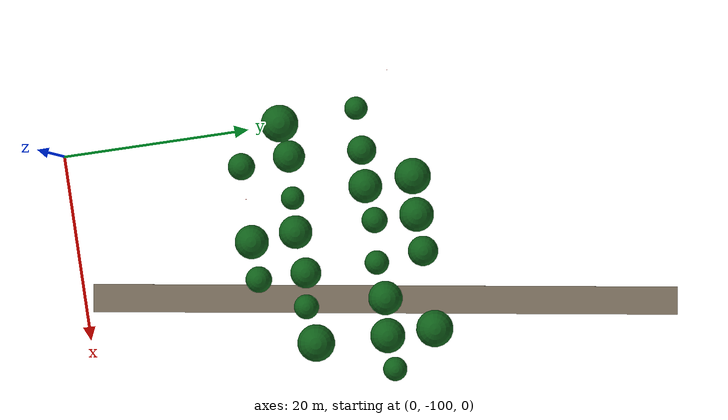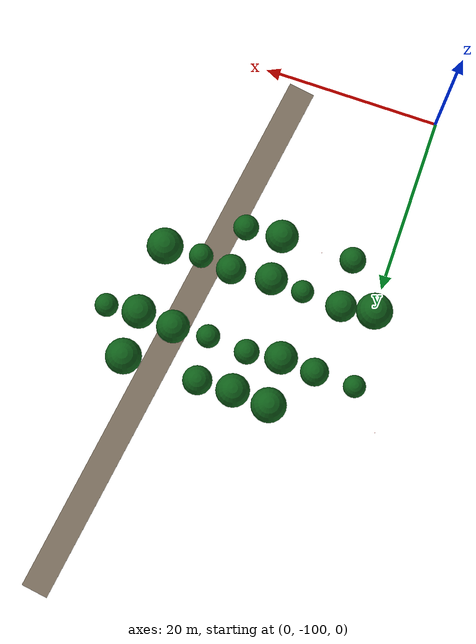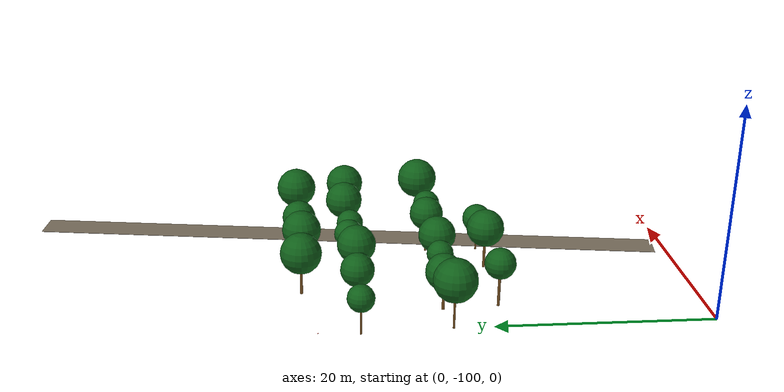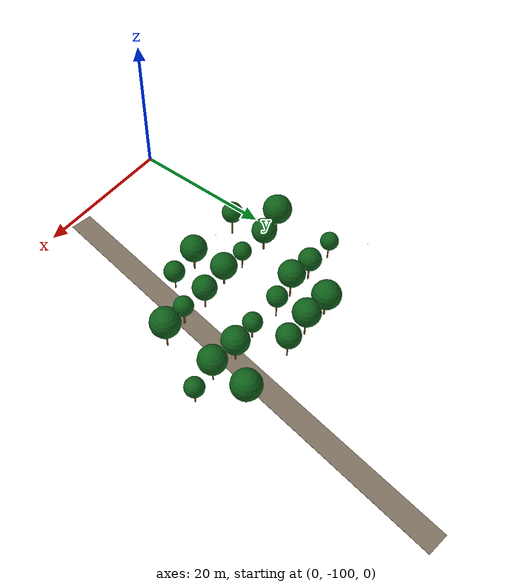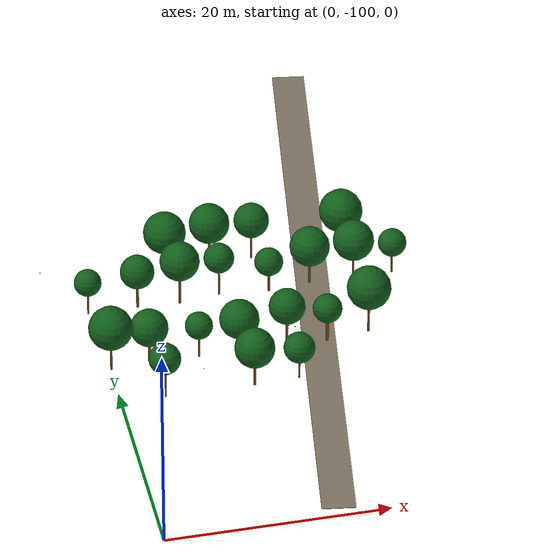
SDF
<sdf version="1.9">
 <world name="cheongsong_orchard">
  <model name="road_9">
   <static>true</static>
   <pose>20.2 -68.0 0.02 0 0 1.4209</pose>
   <link name="link">
    <collision name="collision">
     <geometry><box><size>62.9 3.0 0.04</size></box></geometry>
     <surface><friction><ode><mu>0.9</mu><mu2>0.9</mu2></ode></friction></surface>
    </collision>
    <visual name="visual">
     <geometry><box><size>62.9 3.0 0.04</size></box></geometry>
     <material><ambient>0.4 0.35 0.28 1</ambient><diffuse>0.5 0.45 0.38 1</diffuse></material>
    </visual>
   </link>
  </model>
  <model name="apple_tree_399">
   <static>true</static>
   <pose>3.98 -81.08 0 0 0 0</pose>
   <link name="link">
    <collision name="trunk_col">
     <pose>0 0 1.39 0 0 0</pose>
     <geometry><cylinder><radius>0.126</radius><length>2.78</length></cylinder></geometry>
    </collision>
    <visual name="trunk_vis">
     <pose>0 0 1.39 0 0 0</pose>
     <geometry><cylinder><radius>0.126</radius><length>2.78</length></cylinder></geometry>
     <material><ambient>0.35 0.22 0.08 1</ambient><diffuse>0.45 0.30 0.12 1</diffuse></material>
    </visual>
    <collision name="canopy_col">
     <pose>0 0 4.22 0 0 0</pose>
     <geometry><sphere><radius>1.44</radius></sphere></geometry>
    </collision>
    <visual name="canopy_vis">
     <pose>0 0 4.22 0 0 0</pose>
     <geometry><sphere><radius>1.44</radius></sphere></geometry>
     <material><ambient>0.04 0.28 0.06 1</ambient><diffuse>0.06 0.38 0.10 1</diffuse></material>
    </visual>
   </link>
  </model>
  <model name="apple_tree_401">
   <static>true</static>
   <pose>12.03 -81.15 0 0 0 0</pose>
   <link name="link">
    <collision name="trunk_col">
     <pose>0 0 1.15 0 0 0</pose>
     <geometry><cylinder><radius>0.128</radius><length>2.31</length></cylinder></geometry>
    </collision>
    <visual name="trunk_vis">
     <pose>0 0 1.15 0 0 0</pose>
     <geometry><cylinder><radius>0.128</radius><length>2.31</length></cylinder></geometry>
     <material><ambient>0.35 0.22 0.08 1</ambient><diffuse>0.45 0.30 0.12 1</diffuse></material>
    </visual>
    <collision name="canopy_col">
     <pose>0 0 4.12 0 0 0</pose>
     <geometry><sphere><radius>1.81</radius></sphere></geometry>
    </collision>
    <visual name="canopy_vis">
     <pose>0 0 4.12 0 0 0</pose>
     <geometry><sphere><radius>1.81</radius></sphere></geometry>
     <material><ambient>0.04 0.28 0.06 1</ambient><diffuse>0.06 0.38 0.10 1</diffuse></material>
    </visual>
   </link>
  </model>
  <model name="apple_tree_402">
   <static>true</static>
   <pose>16.08 -81.03 0 0 0 0</pose>
   <link name="link">
    <collision name="trunk_col">
     <pose>0 0 0.98 0 0 0</pose>
     <geometry><cylinder><radius>0.085</radius><length>1.97</length></cylinder></geometry>
    </collision>
    <visual name="trunk_vis">
     <pose>0 0 0.98 0 0 0</pose>
     <geometry><cylinder><radius>0.085</radius><length>1.97</length></cylinder></geometry>
     <material><ambient>0.35 0.22 0.08 1</ambient><diffuse>0.45 0.30 0.12 1</diffuse></material>
    </visual>
    <collision name="canopy_col">
     <pose>0 0 3.38 0 0 0</pose>
     <geometry><sphere><radius>1.41</radius></sphere></geometry>
    </collision>
    <visual name="canopy_vis">
     <pose>0 0 3.38 0 0 0</pose>
     <geometry><sphere><radius>1.41</radius></sphere></geometry>
     <material><ambient>0.04 0.28 0.06 1</ambient><diffuse>0.06 0.38 0.10 1</diffuse></material>
    </visual>
   </link>
  </model>
  <model name="apple_tree_456">
   <static>true</static>
   <pose>0.07 -76.41 0 0 0 0</pose>
   <link name="link">
    <collision name="trunk_col">
     <pose>0 0 1.34 0 0 0</pose>
     <geometry><cylinder><radius>0.097</radius><length>2.68</length></cylinder></geometry>
    </collision>
    <visual name="trunk_vis">
     <pose>0 0 1.34 0 0 0</pose>
     <geometry><cylinder><radius>0.097</radius><length>2.68</length></cylinder></geometry>
     <material><ambient>0.35 0.22 0.08 1</ambient><diffuse>0.45 0.30 0.12 1</diffuse></material>
    </visual>
    <collision name="canopy_col">
     <pose>0 0 4.66 0 0 0</pose>
     <geometry><sphere><radius>1.99</radius></sphere></geometry>
    </collision>
    <visual name="canopy_vis">
     <pose>0 0 4.66 0 0 0</pose>
     <geometry><sphere><radius>1.99</radius></sphere></geometry>
     <material><ambient>0.04 0.28 0.06 1</ambient><diffuse>0.06 0.38 0.10 1</diffuse></material>
    </visual>
   </link>
  </model>
  <model name="apple_tree_457">
   <static>true</static>
   <pose>3.61 -75.96 0 0 0 0</pose>
   <link name="link">
    <collision name="trunk_col">
     <pose>0 0 1.02 0 0 0</pose>
     <geometry><cylinder><radius>0.130</radius><length>2.04</length></cylinder></geometry>
    </collision>
    <visual name="trunk_vis">
     <pose>0 0 1.02 0 0 0</pose>
     <geometry><cylinder><radius>0.130</radius><length>2.04</length></cylinder></geometry>
     <material><ambient>0.35 0.22 0.08 1</ambient><diffuse>0.45 0.30 0.12 1</diffuse></material>
    </visual>
    <collision name="canopy_col">
     <pose>0 0 3.75 0 0 0</pose>
     <geometry><sphere><radius>1.71</radius></sphere></geometry>
    </collision>
    <visual name="canopy_vis">
     <pose>0 0 3.75 0 0 0</pose>
     <geometry><sphere><radius>1.71</radius></sphere></geometry>
     <material><ambient>0.04 0.28 0.06 1</ambient><diffuse>0.06 0.38 0.10 1</diffuse></material>
    </visual>
   </link>
  </model>
  <model name="apple_tree_458">
   <static>true</static>
   <pose>8.04 -76.22 0 0 0 0</pose>
   <link name="link">
    <collision name="trunk_col">
     <pose>0 0 1.10 0 0 0</pose>
     <geometry><cylinder><radius>0.097</radius><length>2.21</length></cylinder></geometry>
    </collision>
    <visual name="trunk_vis">
     <pose>0 0 1.10 0 0 0</pose>
     <geometry><cylinder><radius>0.097</radius><length>2.21</length></cylinder></geometry>
     <material><ambient>0.35 0.22 0.08 1</ambient><diffuse>0.45 0.30 0.12 1</diffuse></material>
    </visual>
    <collision name="canopy_col">
     <pose>0 0 3.46 0 0 0</pose>
     <geometry><sphere><radius>1.25</radius></sphere></geometry>
    </collision>
    <visual name="canopy_vis">
     <pose>0 0 3.46 0 0 0</pose>
     <geometry><sphere><radius>1.25</radius></sphere></geometry>
     <material><ambient>0.04 0.28 0.06 1</ambient><diffuse>0.06 0.38 0.10 1</diffuse></material>
    </visual>
   </link>
  </model>
  <model name="apple_tree_459">
   <static>true</static>
   <pose>11.66 -76.42 0 0 0 0</pose>
   <link name="link">
    <collision name="trunk_col">
     <pose>0 0 0.98 0 0 0</pose>
     <geometry><cylinder><radius>0.107</radius><length>1.95</length></cylinder></geometry>
    </collision>
    <visual name="trunk_vis">
     <pose>0 0 0.98 0 0 0</pose>
     <geometry><cylinder><radius>0.107</radius><length>1.95</length></cylinder></geometry>
     <material><ambient>0.35 0.22 0.08 1</ambient><diffuse>0.45 0.30 0.12 1</diffuse></material>
    </visual>
    <collision name="canopy_col">
     <pose>0 0 3.74 0 0 0</pose>
     <geometry><sphere><radius>1.79</radius></sphere></geometry>
    </collision>
    <visual name="canopy_vis">
     <pose>0 0 3.74 0 0 0</pose>
     <geometry><sphere><radius>1.79</radius></sphere></geometry>
     <material><ambient>0.04 0.28 0.06 1</ambient><diffuse>0.06 0.38 0.10 1</diffuse></material>
    </visual>
   </link>
  </model>
  <model name="apple_tree_460">
   <static>true</static>
   <pose>16.09 -75.96 0 0 0 0</pose>
   <link name="link">
    <collision name="trunk_col">
     <pose>0 0 1.22 0 0 0</pose>
     <geometry><cylinder><radius>0.107</radius><length>2.43</length></cylinder></geometry>
    </collision>
    <visual name="trunk_vis">
     <pose>0 0 1.22 0 0 0</pose>
     <geometry><cylinder><radius>0.107</radius><length>2.43</length></cylinder></geometry>
     <material><ambient>0.35 0.22 0.08 1</ambient><diffuse>0.45 0.30 0.12 1</diffuse></material>
    </visual>
    <collision name="canopy_col">
     <pose>0 0 4.07 0 0 0</pose>
     <geometry><sphere><radius>1.64</radius></sphere></geometry>
    </collision>
    <visual name="canopy_vis">
     <pose>0 0 4.07 0 0 0</pose>
     <geometry><sphere><radius>1.64</radius></sphere></geometry>
     <material><ambient>0.04 0.28 0.06 1</ambient><diffuse>0.06 0.38 0.10 1</diffuse></material>
    </visual>
   </link>
  </model>
  <model name="apple_tree_461">
   <static>true</static>
   <pose>19.67 -76.43 0 0 0 0</pose>
   <link name="link">
    <collision name="trunk_col">
     <pose>0 0 1.14 0 0 0</pose>
     <geometry><cylinder><radius>0.142</radius><length>2.28</length></cylinder></geometry>
    </collision>
    <visual name="trunk_vis">
     <pose>0 0 1.14 0 0 0</pose>
     <geometry><cylinder><radius>0.142</radius><length>2.28</length></cylinder></geometry>
     <material><ambient>0.35 0.22 0.08 1</ambient><diffuse>0.45 0.30 0.12 1</diffuse></material>
    </visual>
    <collision name="canopy_col">
     <pose>0 0 3.61 0 0 0</pose>
     <geometry><sphere><radius>1.33</radius></sphere></geometry>
    </collision>
    <visual name="canopy_vis">
     <pose>0 0 3.61 0 0 0</pose>
     <geometry><sphere><radius>1.33</radius></sphere></geometry>
     <material><ambient>0.04 0.28 0.06 1</ambient><diffuse>0.06 0.38 0.10 1</diffuse></material>
    </visual>
   </link>
  </model>
  <model name="apple_tree_462">
   <static>true</static>
   <pose>23.56 -75.92 0 0 0 0</pose>
   <link name="link">
    <collision name="trunk_col">
     <pose>0 0 1.45 0 0 0</pose>
     <geometry><cylinder><radius>0.104</radius><length>2.90</length></cylinder></geometry>
    </collision>
    <visual name="trunk_vis">
     <pose>0 0 1.45 0 0 0</pose>
     <geometry><cylinder><radius>0.104</radius><length>2.90</length></cylinder></geometry>
     <material><ambient>0.35 0.22 0.08 1</ambient><diffuse>0.45 0.30 0.12 1</diffuse></material>
    </visual>
    <collision name="canopy_col">
     <pose>0 0 4.89 0 0 0</pose>
     <geometry><sphere><radius>1.99</radius></sphere></geometry>
    </collision>
    <visual name="canopy_vis">
     <pose>0 0 4.89 0 0 0</pose>
     <geometry><sphere><radius>1.99</radius></sphere></geometry>
     <material><ambient>0.04 0.28 0.06 1</ambient><diffuse>0.06 0.38 0.10 1</diffuse></material>
    </visual>
   </link>
  </model>
  <model name="apple_tree_515">
   <static>true</static>
   <pose>-0.43 -68.19 0 0 0 0</pose>
   <link name="link">
    <collision name="trunk_col">
     <pose>0 0 1.12 0 0 0</pose>
     <geometry><cylinder><radius>0.085</radius><length>2.25</length></cylinder></geometry>
    </collision>
    <visual name="trunk_vis">
     <pose>0 0 1.12 0 0 0</pose>
     <geometry><cylinder><radius>0.085</radius><length>2.25</length></cylinder></geometry>
     <material><ambient>0.35 0.22 0.08 1</ambient><diffuse>0.45 0.30 0.12 1</diffuse></material>
    </visual>
    <collision name="canopy_col">
     <pose>0 0 3.49 0 0 0</pose>
     <geometry><sphere><radius>1.24</radius></sphere></geometry>
    </collision>
    <visual name="canopy_vis">
     <pose>0 0 3.49 0 0 0</pose>
     <geometry><sphere><radius>1.24</radius></sphere></geometry>
     <material><ambient>0.04 0.28 0.06 1</ambient><diffuse>0.06 0.38 0.10 1</diffuse></material>
    </visual>
   </link>
  </model>
  <model name="apple_tree_516">
   <static>true</static>
   <pose>4.08 -68.22 0 0 0 0</pose>
   <link name="link">
    <collision name="trunk_col">
     <pose>0 0 1.23 0 0 0</pose>
     <geometry><cylinder><radius>0.117</radius><length>2.46</length></cylinder></geometry>
    </collision>
    <visual name="trunk_vis">
     <pose>0 0 1.23 0 0 0</pose>
     <geometry><cylinder><radius>0.117</radius><length>2.46</length></cylinder></geometry>
     <material><ambient>0.35 0.22 0.08 1</ambient><diffuse>0.45 0.30 0.12 1</diffuse></material>
    </visual>
    <collision name="canopy_col">
     <pose>0 0 4.00 0 0 0</pose>
     <geometry><sphere><radius>1.55</radius></sphere></geometry>
    </collision>
    <visual name="canopy_vis">
     <pose>0 0 4.00 0 0 0</pose>
     <geometry><sphere><radius>1.55</radius></sphere></geometry>
     <material><ambient>0.04 0.28 0.06 1</ambient><diffuse>0.06 0.38 0.10 1</diffuse></material>
    </visual>
   </link>
  </model>
  <model name="apple_tree_517">
   <static>true</static>
   <pose>7.92 -68.41 0 0 0 0</pose>
   <link name="link">
    <collision name="trunk_col">
     <pose>0 0 1.46 0 0 0</pose>
     <geometry><cylinder><radius>0.114</radius><length>2.92</length></cylinder></geometry>
    </collision>
    <visual name="trunk_vis">
     <pose>0 0 1.46 0 0 0</pose>
     <geometry><cylinder><radius>0.114</radius><length>2.92</length></cylinder></geometry>
     <material><ambient>0.35 0.22 0.08 1</ambient><diffuse>0.45 0.30 0.12 1</diffuse></material>
    </visual>
    <collision name="canopy_col">
     <pose>0 0 4.72 0 0 0</pose>
     <geometry><sphere><radius>1.80</radius></sphere></geometry>
    </collision>
    <visual name="canopy_vis">
     <pose>0 0 4.72 0 0 0</pose>
     <geometry><sphere><radius>1.80</radius></sphere></geometry>
     <material><ambient>0.04 0.28 0.06 1</ambient><diffuse>0.06 0.38 0.10 1</diffuse></material>
    </visual>
   </link>
  </model>
  <model name="apple_tree_518">
   <static>true</static>
   <pose>11.61 -67.95 0 0 0 0</pose>
   <link name="link">
    <collision name="trunk_col">
     <pose>0 0 1.37 0 0 0</pose>
     <geometry><cylinder><radius>0.081</radius><length>2.74</length></cylinder></geometry>
    </collision>
    <visual name="trunk_vis">
     <pose>0 0 1.37 0 0 0</pose>
     <geometry><cylinder><radius>0.081</radius><length>2.74</length></cylinder></geometry>
     <material><ambient>0.35 0.22 0.08 1</ambient><diffuse>0.45 0.30 0.12 1</diffuse></material>
    </visual>
    <collision name="canopy_col">
     <pose>0 0 4.12 0 0 0</pose>
     <geometry><sphere><radius>1.38</radius></sphere></geometry>
    </collision>
    <visual name="canopy_vis">
     <pose>0 0 4.12 0 0 0</pose>
     <geometry><sphere><radius>1.38</radius></sphere></geometry>
     <material><ambient>0.04 0.28 0.06 1</ambient><diffuse>0.06 0.38 0.10 1</diffuse></material>
    </visual>
   </link>
  </model>
  <model name="apple_tree_519">
   <static>true</static>
   <pose>16.10 -68.36 0 0 0 0</pose>
   <link name="link">
    <collision name="trunk_col">
     <pose>0 0 0.99 0 0 0</pose>
     <geometry><cylinder><radius>0.115</radius><length>1.97</length></cylinder></geometry>
    </collision>
    <visual name="trunk_vis">
     <pose>0 0 0.99 0 0 0</pose>
     <geometry><cylinder><radius>0.115</radius><length>1.97</length></cylinder></geometry>
     <material><ambient>0.35 0.22 0.08 1</ambient><diffuse>0.45 0.30 0.12 1</diffuse></material>
    </visual>
    <collision name="canopy_col">
     <pose>0 0 3.27 0 0 0</pose>
     <geometry><sphere><radius>1.30</radius></sphere></geometry>
    </collision>
    <visual name="canopy_vis">
     <pose>0 0 3.27 0 0 0</pose>
     <geometry><sphere><radius>1.30</radius></sphere></geometry>
     <material><ambient>0.04 0.28 0.06 1</ambient><diffuse>0.06 0.38 0.10 1</diffuse></material>
    </visual>
   </link>
  </model>
  <model name="apple_tree_520">
   <static>true</static>
   <pose>19.94 -68.01 0 0 0 0</pose>
   <link name="link">
    <collision name="trunk_col">
     <pose>0 0 1.16 0 0 0</pose>
     <geometry><cylinder><radius>0.125</radius><length>2.32</length></cylinder></geometry>
    </collision>
    <visual name="trunk_vis">
     <pose>0 0 1.16 0 0 0</pose>
     <geometry><cylinder><radius>0.125</radius><length>2.32</length></cylinder></geometry>
     <material><ambient>0.35 0.22 0.08 1</ambient><diffuse>0.45 0.30 0.12 1</diffuse></material>
    </visual>
    <collision name="canopy_col">
     <pose>0 0 4.13 0 0 0</pose>
     <geometry><sphere><radius>1.82</radius></sphere></geometry>
    </collision>
    <visual name="canopy_vis">
     <pose>0 0 4.13 0 0 0</pose>
     <geometry><sphere><radius>1.82</radius></sphere></geometry>
     <material><ambient>0.04 0.28 0.06 1</ambient><diffuse>0.06 0.38 0.10 1</diffuse></material>
    </visual>
   </link>
  </model>
  <model name="apple_tree_521">
   <static>true</static>
   <pose>23.91 -68.33 0 0 0 0</pose>
   <link name="link">
    <collision name="trunk_col">
     <pose>0 0 1.27 0 0 0</pose>
     <geometry><cylinder><radius>0.090</radius><length>2.54</length></cylinder></geometry>
    </collision>
    <visual name="trunk_vis">
     <pose>0 0 1.27 0 0 0</pose>
     <geometry><cylinder><radius>0.090</radius><length>2.54</length></cylinder></geometry>
     <material><ambient>0.35 0.22 0.08 1</ambient><diffuse>0.45 0.30 0.12 1</diffuse></material>
    </visual>
    <collision name="canopy_col">
     <pose>0 0 4.41 0 0 0</pose>
     <geometry><sphere><radius>1.86</radius></sphere></geometry>
    </collision>
    <visual name="canopy_vis">
     <pose>0 0 4.41 0 0 0</pose>
     <geometry><sphere><radius>1.86</radius></sphere></geometry>
     <material><ambient>0.04 0.28 0.06 1</ambient><diffuse>0.06 0.38 0.10 1</diffuse></material>
    </visual>
   </link>
  </model>
  <model name="apple_tree_522">
   <static>true</static>
   <pose>27.57 -68.06 0 0 0 0</pose>
   <link name="link">
    <collision name="trunk_col">
     <pose>0 0 1.03 0 0 0</pose>
     <geometry><cylinder><radius>0.088</radius><length>2.06</length></cylinder></geometry>
    </collision>
    <visual name="trunk_vis">
     <pose>0 0 1.03 0 0 0</pose>
     <geometry><cylinder><radius>0.088</radius><length>2.06</length></cylinder></geometry>
     <material><ambient>0.35 0.22 0.08 1</ambient><diffuse>0.45 0.30 0.12 1</diffuse></material>
    </visual>
    <collision name="canopy_col">
     <pose>0 0 3.35 0 0 0</pose>
     <geometry><sphere><radius>1.29</radius></sphere></geometry>
    </collision>
    <visual name="canopy_vis">
     <pose>0 0 3.35 0 0 0</pose>
     <geometry><sphere><radius>1.29</radius></sphere></geometry>
     <material><ambient>0.04 0.28 0.06 1</ambient><diffuse>0.06 0.38 0.10 1</diffuse></material>
    </visual>
   </link>
  </model>
  <model name="apple_tree_573">
   <static>true</static>
   <pose>7.58 -63.28 0 0 0 0</pose>
   <link name="link">
    <collision name="trunk_col">
     <pose>0 0 1.09 0 0 0</pose>
     <geometry><cylinder><radius>0.125</radius><length>2.18</length></cylinder></geometry>
    </collision>
    <visual name="trunk_vis">
     <pose>0 0 1.09 0 0 0</pose>
     <geometry><cylinder><radius>0.125</radius><length>2.18</length></cylinder></geometry>
     <material><ambient>0.35 0.22 0.08 1</ambient><diffuse>0.45 0.30 0.12 1</diffuse></material>
    </visual>
    <collision name="canopy_col">
     <pose>0 0 4.12 0 0 0</pose>
     <geometry><sphere><radius>1.93</radius></sphere></geometry>
    </collision>
    <visual name="canopy_vis">
     <pose>0 0 4.12 0 0 0</pose>
     <geometry><sphere><radius>1.93</radius></sphere></geometry>
     <material><ambient>0.04 0.28 0.06 1</ambient><diffuse>0.06 0.38 0.10 1</diffuse></material>
    </visual>
   </link>
  </model>
  <model name="apple_tree_574">
   <static>true</static>
   <pose>11.66 -63.47 0 0 0 0</pose>
   <link name="link">
    <collision name="trunk_col">
     <pose>0 0 1.41 0 0 0</pose>
     <geometry><cylinder><radius>0.107</radius><length>2.81</length></cylinder></geometry>
    </collision>
    <visual name="trunk_vis">
     <pose>0 0 1.41 0 0 0</pose>
     <geometry><cylinder><radius>0.107</radius><length>2.81</length></cylinder></geometry>
     <material><ambient>0.35 0.22 0.08 1</ambient><diffuse>0.45 0.30 0.12 1</diffuse></material>
    </visual>
    <collision name="canopy_col">
     <pose>0 0 4.65 0 0 0</pose>
     <geometry><sphere><radius>1.84</radius></sphere></geometry>
    </collision>
    <visual name="canopy_vis">
     <pose>0 0 4.65 0 0 0</pose>
     <geometry><sphere><radius>1.84</radius></sphere></geometry>
     <material><ambient>0.04 0.28 0.06 1</ambient><diffuse>0.06 0.38 0.10 1</diffuse></material>
    </visual>
   </link>
  </model>
  <model name="apple_tree_575">
   <static>true</static>
   <pose>15.58 -63.34 0 0 0 0</pose>
   <link name="link">
    <collision name="trunk_col">
     <pose>0 0 1.33 0 0 0</pose>
     <geometry><cylinder><radius>0.082</radius><length>2.66</length></cylinder></geometry>
    </collision>
    <visual name="trunk_vis">
     <pose>0 0 1.33 0 0 0</pose>
     <geometry><cylinder><radius>0.082</radius><length>2.66</length></cylinder></geometry>
     <material><ambient>0.35 0.22 0.08 1</ambient><diffuse>0.45 0.30 0.12 1</diffuse></material>
    </visual>
    <collision name="canopy_col">
     <pose>0 0 4.27 0 0 0</pose>
     <geometry><sphere><radius>1.61</radius></sphere></geometry>
    </collision>
    <visual name="canopy_vis">
     <pose>0 0 4.27 0 0 0</pose>
     <geometry><sphere><radius>1.61</radius></sphere></geometry>
     <material><ambient>0.04 0.28 0.06 1</ambient><diffuse>0.06 0.38 0.10 1</diffuse></material>
    </visual>
   </link>
  </model>
  <model name="apple_tree_577">
   <static>true</static>
   <pose>23.90 -63.30 0 0 0 0</pose>
   <link name="link">
    <collision name="trunk_col">
     <pose>0 0 1.02 0 0 0</pose>
     <geometry><cylinder><radius>0.087</radius><length>2.03</length></cylinder></geometry>
    </collision>
    <visual name="trunk_vis">
     <pose>0 0 1.02 0 0 0</pose>
     <geometry><cylinder><radius>0.087</radius><length>2.03</length></cylinder></geometry>
     <material><ambient>0.35 0.22 0.08 1</ambient><diffuse>0.45 0.30 0.12 1</diffuse></material>
    </visual>
    <collision name="canopy_col">
     <pose>0 0 4.01 0 0 0</pose>
     <geometry><sphere><radius>1.98</radius></sphere></geometry>
    </collision>
    <visual name="canopy_vis">
     <pose>0 0 4.01 0 0 0</pose>
     <geometry><sphere><radius>1.98</radius></sphere></geometry>
     <material><ambient>0.04 0.28 0.06 1</ambient><diffuse>0.06 0.38 0.10 1</diffuse></material>
    </visual>
   </link>
  </model>
  <model name="apple_400_0">
   <static>true</static>
   <pose>7.44 -81.17 2.62 0 0 0</pose>
   <link name="link">
    <visual name="visual">
     <geometry><sphere><radius>0.04</radius></sphere></geometry>
     <material><ambient>0.7 0.05 0.02 1</ambient><diffuse>0.9 0.10 0.05 1</diffuse></material>
    </visual>
   </link>
  </model>
  <model name="apple_460_0">
   <static>true</static>
   <pose>16.61 -76.92 2.44 0 0 0</pose>
   <link name="link">
    <visual name="visual">
     <geometry><sphere><radius>0.04</radius></sphere></geometry>
     <material><ambient>0.7 0.05 0.02 1</ambient><diffuse>0.9 0.10 0.05 1</diffuse></material>
    </visual>
   </link>
  </model>
  <model name="apple_460_1">
   <static>true</static>
   <pose>16.12 -76.49 2.29 0 0 0</pose>
   <link name="link">
    <visual name="visual">
     <geometry><sphere><radius>0.04</radius></sphere></geometry>
     <material><ambient>0.7 0.05 0.02 1</ambient><diffuse>0.9 0.10 0.05 1</diffuse></material>
    </visual>
   </link>
  </model>
  <model name="apple_460_2">
   <static>true</static>
   <pose>16.19 -76.28 1.80 0 0 0</pose>
   <link name="link">
    <visual name="visual">
     <geometry><sphere><radius>0.04</radius></sphere></geometry>
     <material><ambient>0.7 0.05 0.02 1</ambient><diffuse>0.9 0.10 0.05 1</diffuse></material>
    </visual>
   </link>
  </model>
  <model name="apple_520_0">
   <static>true</static>
   <pose>21.32 -67.58 2.43 0 0 0</pose>
   <link name="link">
    <visual name="visual">
     <geometry><sphere><radius>0.04</radius></sphere></geometry>
     <material><ambient>0.7 0.05 0.02 1</ambient><diffuse>0.9 0.10 0.05 1</diffuse></material>
    </visual>
   </link>
  </model>
  <model name="apple_520_1">
   <static>true</static>
   <pose>19.75 -68.28 2.47 0 0 0</pose>
   <link name="link">
    <visual name="visual">
     <geometry><sphere><radius>0.04</radius></sphere></geometry>
     <material><ambient>0.7 0.05 0.02 1</ambient><diffuse>0.9 0.10 0.05 1</diffuse></material>
    </visual>
   </link>
  </model>
  <model name="apple_520_2">
   <static>true</static>
   <pose>19.30 -67.65 2.29 0 0 0</pose>
   <link name="link">
    <visual name="visual">
     <geometry><sphere><radius>0.04</radius></sphere></geometry>
     <material><ambient>0.7 0.05 0.02 1</ambient><diffuse>0.9 0.10 0.05 1</diffuse></material>
    </visual>
   </link>
  </model>
  <model name="apple_520_3">
   <static>true</static>
   <pose>19.47 -67.94 2.47 0 0 0</pose>
   <link name="link">
    <visual name="visual">
     <geometry><sphere><radius>0.04</radius></sphere></geometry>
     <material><ambient>0.7 0.05 0.02 1</ambient><diffuse>0.9 0.10 0.05 1</diffuse></material>
    </visual>
   </link>
  </model>
  <model name="apple_520_4">
   <static>true</static>
   <pose>19.49 -68.49 2.43 0 0 0</pose>
   <link name="link">
    <visual name="visual">
     <geometry><sphere><radius>0.04</radius></sphere></geometry>
     <material><ambient>0.7 0.05 0.02 1</ambient><diffuse>0.9 0.10 0.05 1</diffuse></material>
    </visual>
   </link>
  </model>
  <model name="apple_570_0">
   <static>true</static>
   <pose>-4.07 -64.33 2.26 0 0 0</pose>
   <link name="link">
    <visual name="visual">
     <geometry><sphere><radius>0.04</radius></sphere></geometry>
     <material><ambient>0.7 0.05 0.02 1</ambient><diffuse>0.9 0.10 0.05 1</diffuse></material>
    </visual>
   </link>
  </model>
 </world>
</sdf>
